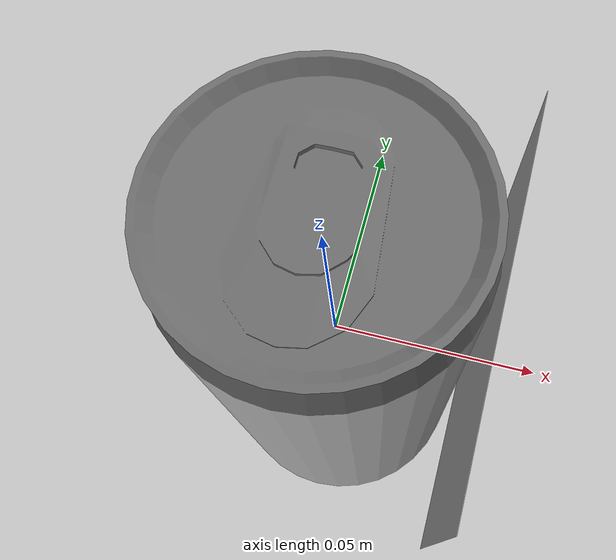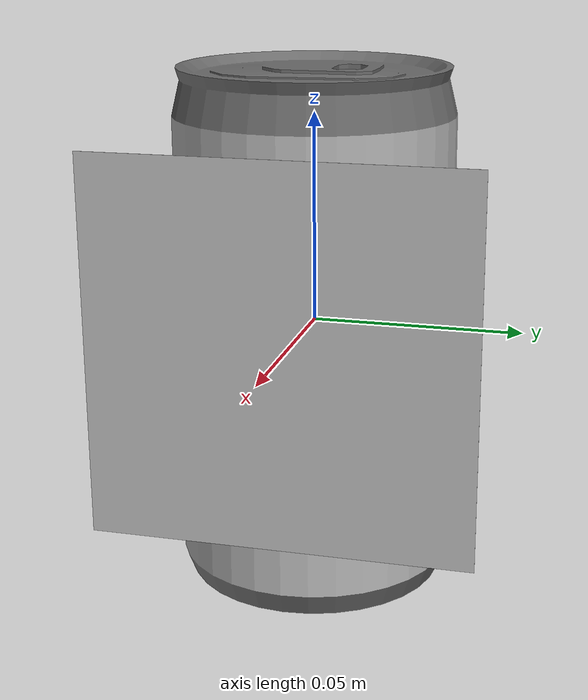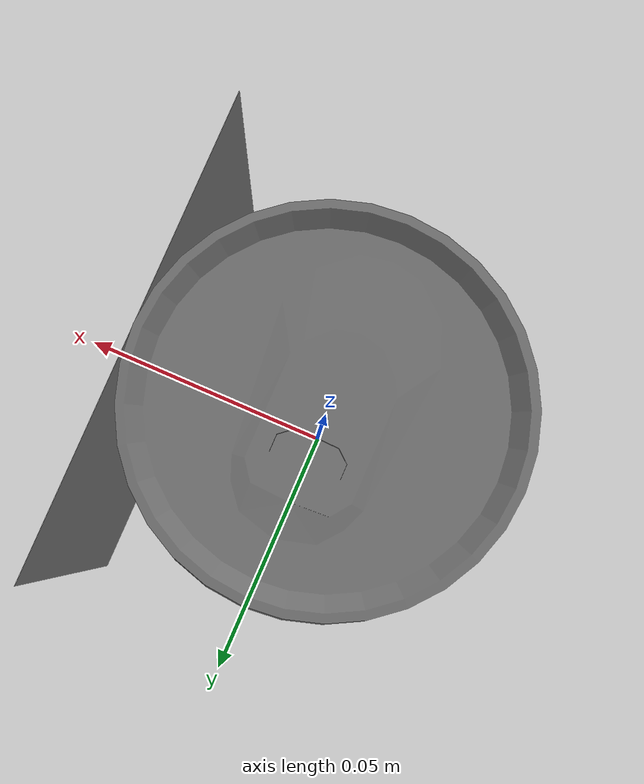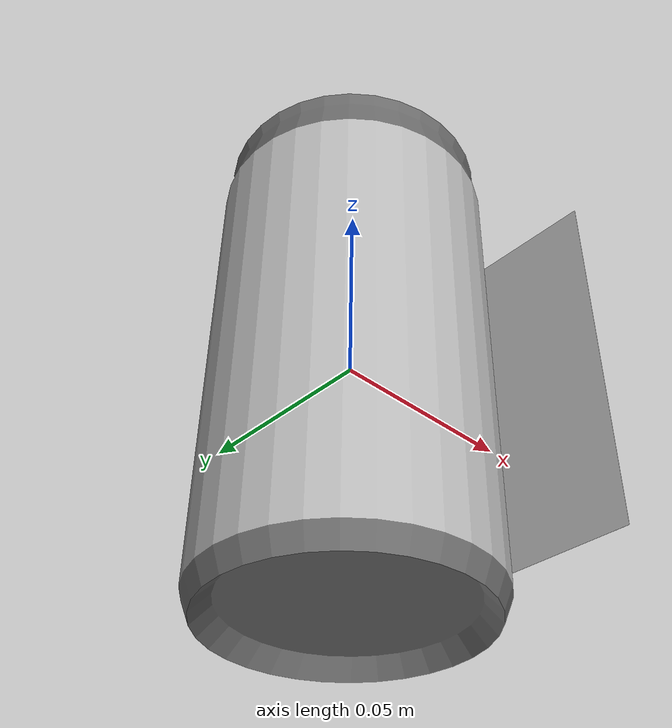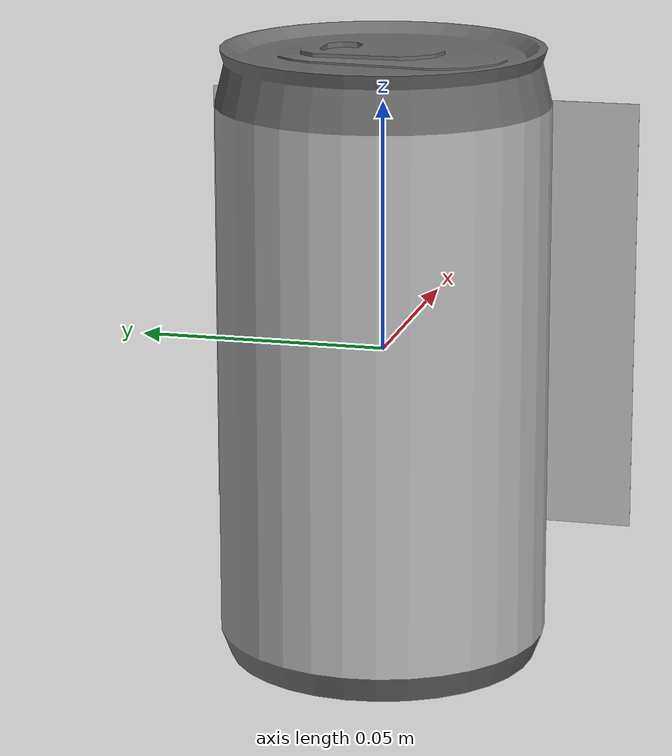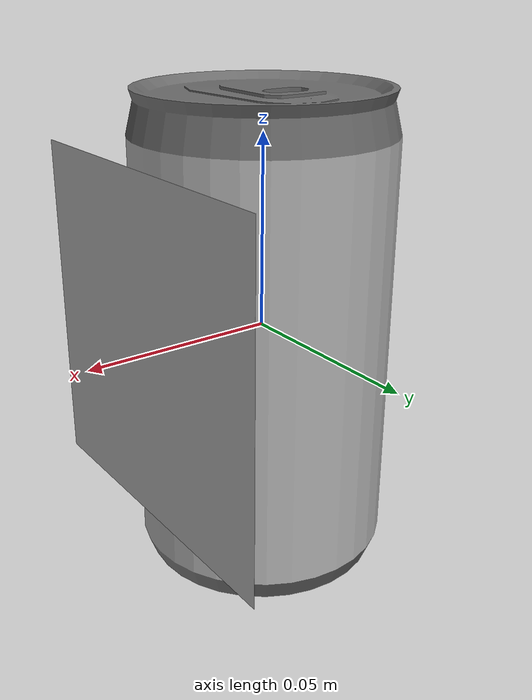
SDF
<?xml version="1.0" ?>
<sdf version="1.4">
    <model name='hsr_coke_with_ar'>
      <link name='link'>
        <pose>0 0 0 0 0 0</pose>
        <inertial>
          <mass>0.35</mass>
          <inertia>
            <ixx>0.001481</ixx>
            <ixy>0</ixy>
            <ixz>0</ixz>
            <iyy>0.001481</iyy>
            <iyz>0</iyz>
            <izz>0.000168</izz>
          </inertia>
        </inertial>
        <visual name='hsr_coke'>
          <pose>0.0 0.0 0.0 0 0 0</pose>
          <geometry>
            <mesh>
              <uri>model://hsr_coke/meshes/hsr_coke.dae</uri>
            </mesh>
          </geometry>
          <material/>
        </visual>
        <collision name='hsr_coke'>
          <pose>0.0 0.0 0.0 0 0 0</pose>
          <geometry>
            <cylinder>
              <radius>0.033</radius>
              <length>0.1235</length>
            </cylinder>
          </geometry>
          <max_contacts>10</max_contacts>
          <surface>
            <bounce>
              <restitution_coefficient>0.2</restitution_coefficient>
              <threshold>0</threshold>
            </bounce>
            <friction>
              <ode/>
            </friction>
            <contact>
              <ode>
                <max_vel>10</max_vel>
              </ode>
            </contact>
          </surface>
        </collision>
        <velocity_decay>
          <linear>0</linear>
          <angular>0</angular>
        </velocity_decay>
        <self_collide>0</self_collide>
        <kinematic>0</kinematic>
        <gravity>1</gravity>
        <visual name='Apriltag_00000'>
          <pose>0.035 0 0.0 0 1.57 3.141</pose>
          <geometry>
            <box>
              <size>0.09 0.09 0.0001</size>
            </box>
          </geometry>
          <material>
            <script>
              <uri>model://hsr_coke_with_april/materials/scripts</uri>
              <uri>model://hsr_coke_with_april/materials/textures</uri>
              <name>marker/Apriltag36_11_00000</name>
            </script>
          </material>
        </visual>
      </link>
      <static>0</static>
    </model>
</sdf>
